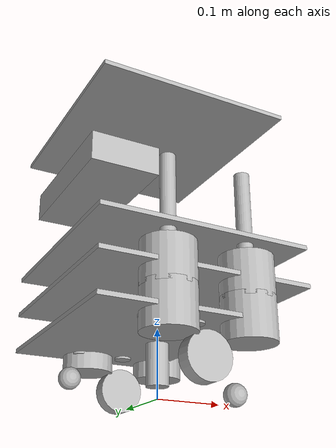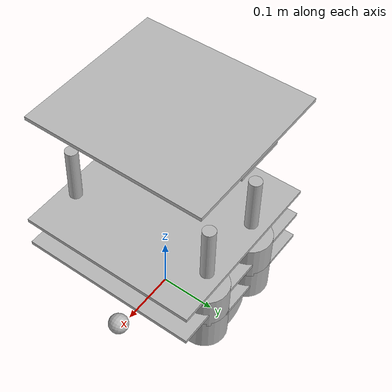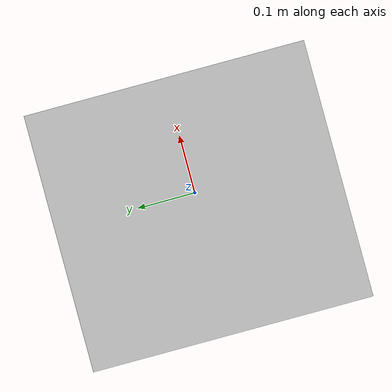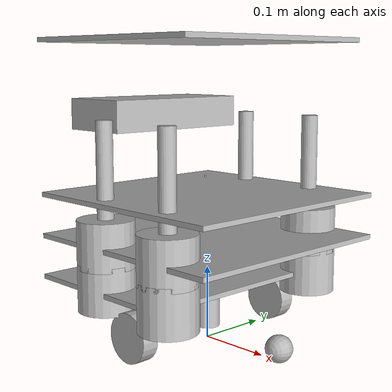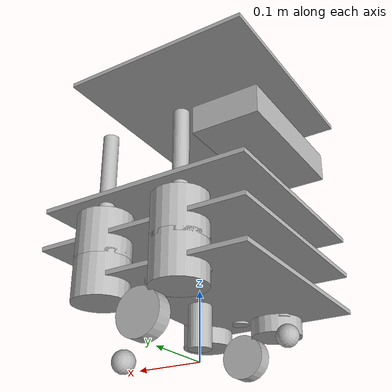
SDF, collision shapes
<?xml version='1.0'?>
<sdf version='1.7'>
  <model name='bot'>
    <link name='rack'>
      <inertial>
        <pose>0.001453 -0.000453 0.029787 0 -0 0</pose>
        <inertia>
          <ixx>0.05864</ixx>
          <ixy>0.000124</ixy>
          <ixz>0.000615</ixz>
          <iyy>0.058786</iyy>
          <iyz>1.4e-05</iyz>
          <izz>1.53244</izz>
        </inertia>
        <mass>2.234</mass>
      </inertial>
      <self_collide>0</self_collide>
      <enable_wind>0</enable_wind>
      <kinematic>0</kinematic>
      <pose>0 0 0 0 -0 0</pose>
      <visual name='plate_0_visual'>
        <pose>-0.04334 0 0.084757 0 -0 0</pose>
        <geometry>
          <mesh>
            <uri>model://bot/meshes/plate_0_logo.dae</uri>
          </mesh>
        </geometry>
        <material>
          <shader type='pixel'/>
          <emissive>0 0 0 1</emissive>
        </material>
        <transparency>0</transparency>
        <cast_shadows>1</cast_shadows>
      </visual>
      <visual name='standoff_2in_0_visual'>
        <pose>0.06764 0.13142 0.08798 0 -0 0</pose>
        <geometry>
          <mesh>
            <uri>model://bot/meshes/68-04552-2000-RA_Turtlebot_M-F_Standoff.dae</uri>
          </mesh>
        </geometry>
        <material>
          <shader type='pixel'/>
          <emissive>0 0 0 1</emissive>
        </material>
        <transparency>0</transparency>
        <cast_shadows>1</cast_shadows>
      </visual>
      <visual name='standoff_2in_1_visual'>
        <pose>0.06764 -0.13142 0.08798 0 -0 0</pose>
        <geometry>
          <mesh>
            <uri>model://bot/meshes/68-04552-2000-RA_Turtlebot_M-F_Standoff.dae</uri>
          </mesh>
        </geometry>
        <material>
          <shader type='pixel'/>
          <emissive>0 0 0 1</emissive>
        </material>
        <transparency>0</transparency>
        <cast_shadows>1</cast_shadows>
      </visual>
      <visual name='standoff_2in_2_visual'>
        <pose>-0.052832 -0.13142 0.08798 0 -0 0</pose>
        <geometry>
          <mesh>
            <uri>model://bot/meshes/68-04552-2000-RA_Turtlebot_M-F_Standoff.dae</uri>
          </mesh>
        </geometry>
        <material>
          <shader type='pixel'/>
          <emissive>0 0 0 1</emissive>
        </material>
        <transparency>0</transparency>
        <cast_shadows>1</cast_shadows>
      </visual>
      <visual name='standoff_2in_3_visual'>
        <pose>-0.052832 0.13142 0.08798 0 -0 0</pose>
        <geometry>
          <mesh>
            <uri>model://bot/meshes/68-04552-2000-RA_Turtlebot_M-F_Standoff.dae</uri>
          </mesh>
        </geometry>
        <material>
          <shader type='pixel'/>
          <emissive>0 0 0 1</emissive>
        </material>
        <transparency>0</transparency>
        <cast_shadows>1</cast_shadows>
      </visual>
      <visual name='standoff_2in_4_visual'>
        <pose>0.06764 0.13142 0.14513 0 -0 0</pose>
        <geometry>
          <mesh>
            <uri>model://bot/meshes/68-04552-2000-RA_Turtlebot_M-F_Standoff.dae</uri>
          </mesh>
        </geometry>
        <material>
          <shader type='pixel'/>
          <emissive>0 0 0 1</emissive>
        </material>
        <transparency>0</transparency>
        <cast_shadows>1</cast_shadows>
      </visual>
      <visual name='standoff_2in_5_visual'>
        <pose>0.06764 -0.13142 0.14513 0 -0 0</pose>
        <geometry>
          <mesh>
            <uri>model://bot/meshes/68-04552-2000-RA_Turtlebot_M-F_Standoff.dae</uri>
          </mesh>
        </geometry>
        <material>
          <shader type='pixel'/>
          <emissive>0 0 0 1</emissive>
        </material>
        <transparency>0</transparency>
        <cast_shadows>1</cast_shadows>
      </visual>
      <visual name='standoff_2in_6_visual'>
        <pose>-0.052832 -0.13142 0.14513 0 -0 0</pose>
        <geometry>
          <mesh>
            <uri>model://bot/meshes/68-04552-2000-RA_Turtlebot_M-F_Standoff.dae</uri>
          </mesh>
        </geometry>
        <material>
          <shader type='pixel'/>
          <emissive>0 0 0 1</emissive>
        </material>
        <transparency>0</transparency>
        <cast_shadows>1</cast_shadows>
      </visual>
      <visual name='standoff_2in_7_visual'>
        <pose>-0.052832 0.13142 0.14513 0 -0 0</pose>
        <geometry>
          <mesh>
            <uri>model://bot/meshes/68-04552-2000-RA_Turtlebot_M-F_Standoff.dae</uri>
          </mesh>
        </geometry>
        <material>
          <shader type='pixel'/>
          <emissive>0 0 0 1</emissive>
        </material>
        <transparency>0</transparency>
        <cast_shadows>1</cast_shadows>
      </visual>
      <visual name='standoff_8in_0_visual'>
        <pose>0.06764 0.13142 0.20228 0 -0 0</pose>
        <geometry>
          <mesh>
            <uri>model://bot/meshes/68-02421-8000-RA_Turtlebot_F-F_Standoff.dae</uri>
          </mesh>
        </geometry>
        <material>
          <shader type='pixel'/>
          <emissive>0 0 0 1</emissive>
        </material>
        <transparency>0</transparency>
        <cast_shadows>1</cast_shadows>
      </visual>
      <visual name='standoff_8in_1_visual'>
        <pose>0.06764 -0.13142 0.20228 0 -0 0</pose>
        <geometry>
          <mesh>
            <uri>model://bot/meshes/68-02421-8000-RA_Turtlebot_F-F_Standoff.dae</uri>
          </mesh>
        </geometry>
        <material>
          <shader type='pixel'/>
          <emissive>0 0 0 1</emissive>
        </material>
        <transparency>0</transparency>
        <cast_shadows>1</cast_shadows>
      </visual>
      <visual name='standoff_8in_2_visual'>
        <pose>-0.052832 -0.13142 0.20228 0 -0 0</pose>
        <geometry>
          <mesh>
            <uri>model://bot/meshes/68-02421-8000-RA_Turtlebot_F-F_Standoff.dae</uri>
          </mesh>
        </geometry>
        <material>
          <shader type='pixel'/>
          <emissive>0 0 0 1</emissive>
        </material>
        <transparency>0</transparency>
        <cast_shadows>1</cast_shadows>
      </visual>
      <visual name='standoff_8in_3_visual'>
        <pose>-0.052832 0.13142 0.20228 0 -0 0</pose>
        <geometry>
          <mesh>
            <uri>model://bot/meshes/68-02421-8000-RA_Turtlebot_F-F_Standoff.dae</uri>
          </mesh>
        </geometry>
        <material>
          <shader type='pixel'/>
          <emissive>0 0 0 1</emissive>
        </material>
        <transparency>0</transparency>
        <cast_shadows>1</cast_shadows>
      </visual>
      <visual name='standoff_kinect_0_visual'>
        <pose>-0.105098 0.098 0.202308 0 -0 0</pose>
        <geometry>
          <mesh>
            <uri>model://bot/meshes/68-04556-RA_Kinect_Standoff_Assy.dae</uri>
          </mesh>
        </geometry>
        <material>
          <shader type='pixel'/>
          <emissive>0 0 0 1</emissive>
        </material>
        <transparency>0</transparency>
        <cast_shadows>1</cast_shadows>
      </visual>
      <visual name='standoff_kinect_1_visual'>
        <pose>-0.105098 -0.098 0.202308 0 -0 0</pose>
        <geometry>
          <mesh>
            <uri>model://bot/meshes/68-04556-RA_Kinect_Standoff_Assy.dae</uri>
          </mesh>
        </geometry>
        <material>
          <shader type='pixel'/>
          <emissive>0 0 0 1</emissive>
        </material>
        <transparency>0</transparency>
        <cast_shadows>1</cast_shadows>
      </visual>
      <visual name='plate_1_visual'>
        <pose>-0.00266 0 0.141907 0 -0 0</pose>
        <geometry>
          <mesh>
            <uri>model://bot/meshes/plate_1_logo.dae</uri>
          </mesh>
        </geometry>
        <material>
          <shader type='pixel'/>
          <emissive>0 0 0 1</emissive>
        </material>
        <transparency>0</transparency>
        <cast_shadows>1</cast_shadows>
      </visual>
      <visual name='plate_2_visual'>
        <pose>-0.00266 0 0.199108 0 -0 0</pose>
        <geometry>
          <mesh>
            <uri>model://bot/meshes/plate_1_logo.dae</uri>
          </mesh>
        </geometry>
        <material>
          <shader type='pixel'/>
          <emissive>0 0 0 1</emissive>
        </material>
        <transparency>0</transparency>
        <cast_shadows>1</cast_shadows>
      </visual>
      <visual name='plate_3_visual'>
        <pose>-0.01582 0 0.405457 0 -0 0</pose>
        <geometry>
          <mesh>
            <uri>model://bot/meshes/plate_2_logo.dae</uri>
          </mesh>
        </geometry>
        <material>
          <shader type='pixel'/>
          <emissive>0 0 0 1</emissive>
        </material>
        <transparency>0</transparency>
        <cast_shadows>1</cast_shadows>
      </visual>
      <visual name='spacer_0_visual'>
        <pose>-0.00254 0.111468 0.079992 0 -0 0</pose>
        <geometry>
          <mesh>
            <uri>model://bot/meshes/68-02403-125_Spacer.dae</uri>
          </mesh>
        </geometry>
        <material>
          <shader type='pixel'/>
          <emissive>0 0 0 1</emissive>
        </material>
        <transparency>0</transparency>
        <cast_shadows>1</cast_shadows>
      </visual>
      <visual name='spacer_2_visual'>
        <pose>-0.07239 -0.111468 0.079992 0 -0 0</pose>
        <geometry>
          <mesh>
            <uri>model://bot/meshes/68-02403-125_Spacer.dae</uri>
          </mesh>
        </geometry>
        <material>
          <shader type='pixel'/>
          <emissive>0 0 0 1</emissive>
        </material>
        <transparency>0</transparency>
        <cast_shadows>1</cast_shadows>
      </visual>
      <visual name='spacer_1_visual'>
        <pose>-0.00254 -0.111468 0.079992 0 -0 0</pose>
        <geometry>
          <mesh>
            <uri>model://bot/meshes/68-02403-125_Spacer.dae</uri>
          </mesh>
        </geometry>
        <material>
          <shader type='pixel'/>
          <emissive>0 0 0 1</emissive>
        </material>
        <transparency>0</transparency>
        <cast_shadows>1</cast_shadows>
      </visual>
      <visual name='spacer_3_visual'>
        <pose>-0.07239 0.111468 0.079992 0 -0 0</pose>
        <geometry>
          <mesh>
            <uri>model://bot/meshes/68-02403-125_Spacer.dae</uri>
          </mesh>
        </geometry>
        <material>
          <shader type='pixel'/>
          <emissive>0 0 0 1</emissive>
        </material>
        <transparency>0</transparency>
        <cast_shadows>1</cast_shadows>
      </visual>
      <collision name='plate_0_collision'>
        <laser_retro>0</laser_retro>
        <max_contacts>10</max_contacts>
        <pose>-0.04334 0 0.084757 0 -0 0</pose>
        <geometry>
          <box>
            <size>0.233502 0.314845 0.006401</size>
          </box>
        </geometry>
        <surface>
          <friction>
            <ode>
              <mu>1</mu>
              <mu2>1</mu2>
              <fdir1>0 0 0</fdir1>
              <slip1>0</slip1>
              <slip2>0</slip2>
            </ode>
            <torsional>
              <coefficient>1</coefficient>
              <patch_radius>0</patch_radius>
              <surface_radius>0</surface_radius>
              <use_patch_radius>1</use_patch_radius>
              <ode>
                <slip>0</slip>
              </ode>
            </torsional>
          </friction>
          <bounce>
            <restitution_coefficient>0</restitution_coefficient>
            <threshold>1e+06</threshold>
          </bounce>
          <contact>
            <collide_without_contact>0</collide_without_contact>
            <collide_without_contact_bitmask>1</collide_without_contact_bitmask>
            <collide_bitmask>1</collide_bitmask>
            <ode>
              <soft_cfm>0</soft_cfm>
              <soft_erp>0.2</soft_erp>
              <kp>1e+13</kp>
              <kd>1</kd>
              <max_vel>0.01</max_vel>
              <min_depth>0</min_depth>
            </ode>
            <bullet>
              <split_impulse>1</split_impulse>
              <split_impulse_penetration_threshold>-0.01</split_impulse_penetration_threshold>
              <soft_cfm>0</soft_cfm>
              <soft_erp>0.2</soft_erp>
              <kp>1e+13</kp>
              <kd>1</kd>
            </bullet>
          </contact>
        </surface>
      </collision>
      <collision name='plate_2_collision'>
        <laser_retro>0</laser_retro>
        <max_contacts>10</max_contacts>
        <pose>-0.00266 0 0.199108 0 -0 0</pose>
        <geometry>
          <box>
            <size>0.314856 0.314856 0.006401</size>
          </box>
        </geometry>
        <surface>
          <friction>
            <ode>
              <mu>1</mu>
              <mu2>1</mu2>
              <fdir1>0 0 0</fdir1>
              <slip1>0</slip1>
              <slip2>0</slip2>
            </ode>
            <torsional>
              <coefficient>1</coefficient>
              <patch_radius>0</patch_radius>
              <surface_radius>0</surface_radius>
              <use_patch_radius>1</use_patch_radius>
              <ode>
                <slip>0</slip>
              </ode>
            </torsional>
          </friction>
          <bounce>
            <restitution_coefficient>0</restitution_coefficient>
            <threshold>1e+06</threshold>
          </bounce>
          <contact>
            <collide_without_contact>0</collide_without_contact>
            <collide_without_contact_bitmask>1</collide_without_contact_bitmask>
            <collide_bitmask>1</collide_bitmask>
            <ode>
              <soft_cfm>0</soft_cfm>
              <soft_erp>0.2</soft_erp>
              <kp>1e+13</kp>
              <kd>1</kd>
              <max_vel>0.01</max_vel>
              <min_depth>0</min_depth>
            </ode>
            <bullet>
              <split_impulse>1</split_impulse>
              <split_impulse_penetration_threshold>-0.01</split_impulse_penetration_threshold>
              <soft_cfm>0</soft_cfm>
              <soft_erp>0.2</soft_erp>
              <kp>1e+13</kp>
              <kd>1</kd>
            </bullet>
          </contact>
        </surface>
      </collision>
      <collision name='plate_1_collision'>
        <laser_retro>0</laser_retro>
        <max_contacts>10</max_contacts>
        <pose>-0.00266 0 0.141907 0 -0 0</pose>
        <geometry>
          <box>
            <size>0.314856 0.314856 0.006401</size>
          </box>
        </geometry>
        <surface>
          <friction>
            <ode>
              <mu>1</mu>
              <mu2>1</mu2>
              <fdir1>0 0 0</fdir1>
              <slip1>0</slip1>
              <slip2>0</slip2>
            </ode>
            <torsional>
              <coefficient>1</coefficient>
              <patch_radius>0</patch_radius>
              <surface_radius>0</surface_radius>
              <use_patch_radius>1</use_patch_radius>
              <ode>
                <slip>0</slip>
              </ode>
            </torsional>
          </friction>
          <bounce>
            <restitution_coefficient>0</restitution_coefficient>
            <threshold>1e+06</threshold>
          </bounce>
          <contact>
            <collide_without_contact>0</collide_without_contact>
            <collide_without_contact_bitmask>1</collide_without_contact_bitmask>
            <collide_bitmask>1</collide_bitmask>
            <ode>
              <soft_cfm>0</soft_cfm>
              <soft_erp>0.2</soft_erp>
              <kp>1e+13</kp>
              <kd>1</kd>
              <max_vel>0.01</max_vel>
              <min_depth>0</min_depth>
            </ode>
            <bullet>
              <split_impulse>1</split_impulse>
              <split_impulse_penetration_threshold>-0.01</split_impulse_penetration_threshold>
              <soft_cfm>0</soft_cfm>
              <soft_erp>0.2</soft_erp>
              <kp>1e+13</kp>
              <kd>1</kd>
            </bullet>
          </contact>
        </surface>
      </collision>
      <collision name='spacer_0_collision'>
        <laser_retro>0</laser_retro>
        <max_contacts>10</max_contacts>
        <pose>-0.00254 0.111468 0.079992 0 -0 0</pose>
        <geometry>
          <cylinder>
            <radius>0.0127</radius>
            <length>0.003175</length>
          </cylinder>
        </geometry>
        <surface>
          <friction>
            <ode>
              <mu>1</mu>
              <mu2>1</mu2>
              <fdir1>0 0 0</fdir1>
              <slip1>0</slip1>
              <slip2>0</slip2>
            </ode>
            <torsional>
              <coefficient>1</coefficient>
              <patch_radius>0</patch_radius>
              <surface_radius>0</surface_radius>
              <use_patch_radius>1</use_patch_radius>
              <ode>
                <slip>0</slip>
              </ode>
            </torsional>
          </friction>
          <bounce>
            <restitution_coefficient>0</restitution_coefficient>
            <threshold>1e+06</threshold>
          </bounce>
          <contact>
            <collide_without_contact>0</collide_without_contact>
            <collide_without_contact_bitmask>1</collide_without_contact_bitmask>
            <collide_bitmask>1</collide_bitmask>
            <ode>
              <soft_cfm>0</soft_cfm>
              <soft_erp>0.2</soft_erp>
              <kp>1e+13</kp>
              <kd>1</kd>
              <max_vel>0.01</max_vel>
              <min_depth>0</min_depth>
            </ode>
            <bullet>
              <split_impulse>1</split_impulse>
              <split_impulse_penetration_threshold>-0.01</split_impulse_penetration_threshold>
              <soft_cfm>0</soft_cfm>
              <soft_erp>0.2</soft_erp>
              <kp>1e+13</kp>
              <kd>1</kd>
            </bullet>
          </contact>
        </surface>
      </collision>
      <collision name='plate_3_collision'>
        <laser_retro>0</laser_retro>
        <max_contacts>10</max_contacts>
        <pose>-0.01582 0 0.405457 0 -0 0</pose>
        <geometry>
          <box>
            <size>0.288 0.315 0.006401</size>
          </box>
        </geometry>
        <surface>
          <friction>
            <ode>
              <mu>1</mu>
              <mu2>1</mu2>
              <fdir1>0 0 0</fdir1>
              <slip1>0</slip1>
              <slip2>0</slip2>
            </ode>
            <torsional>
              <coefficient>1</coefficient>
              <patch_radius>0</patch_radius>
              <surface_radius>0</surface_radius>
              <use_patch_radius>1</use_patch_radius>
              <ode>
                <slip>0</slip>
              </ode>
            </torsional>
          </friction>
          <bounce>
            <restitution_coefficient>0</restitution_coefficient>
            <threshold>1e+06</threshold>
          </bounce>
          <contact>
            <collide_without_contact>0</collide_without_contact>
            <collide_without_contact_bitmask>1</collide_without_contact_bitmask>
            <collide_bitmask>1</collide_bitmask>
            <ode>
              <soft_cfm>0</soft_cfm>
              <soft_erp>0.2</soft_erp>
              <kp>1e+13</kp>
              <kd>1</kd>
              <max_vel>0.01</max_vel>
              <min_depth>0</min_depth>
            </ode>
            <bullet>
              <split_impulse>1</split_impulse>
              <split_impulse_penetration_threshold>-0.01</split_impulse_penetration_threshold>
              <soft_cfm>0</soft_cfm>
              <soft_erp>0.2</soft_erp>
              <kp>1e+13</kp>
              <kd>1</kd>
            </bullet>
          </contact>
        </surface>
      </collision>
      <collision name='spacer_1_collision'>
        <laser_retro>0</laser_retro>
        <max_contacts>10</max_contacts>
        <pose>-0.00254 -0.111468 0.079992 0 -0 0</pose>
        <geometry>
          <cylinder>
            <radius>0.0127</radius>
            <length>0.003175</length>
          </cylinder>
        </geometry>
        <surface>
          <friction>
            <ode>
              <mu>1</mu>
              <mu2>1</mu2>
              <fdir1>0 0 0</fdir1>
              <slip1>0</slip1>
              <slip2>0</slip2>
            </ode>
            <torsional>
              <coefficient>1</coefficient>
              <patch_radius>0</patch_radius>
              <surface_radius>0</surface_radius>
              <use_patch_radius>1</use_patch_radius>
              <ode>
                <slip>0</slip>
              </ode>
            </torsional>
          </friction>
          <bounce>
            <restitution_coefficient>0</restitution_coefficient>
            <threshold>1e+06</threshold>
          </bounce>
          <contact>
            <collide_without_contact>0</collide_without_contact>
            <collide_without_contact_bitmask>1</collide_without_contact_bitmask>
            <collide_bitmask>1</collide_bitmask>
            <ode>
              <soft_cfm>0</soft_cfm>
              <soft_erp>0.2</soft_erp>
              <kp>1e+13</kp>
              <kd>1</kd>
              <max_vel>0.01</max_vel>
              <min_depth>0</min_depth>
            </ode>
            <bullet>
              <split_impulse>1</split_impulse>
              <split_impulse_penetration_threshold>-0.01</split_impulse_penetration_threshold>
              <soft_cfm>0</soft_cfm>
              <soft_erp>0.2</soft_erp>
              <kp>1e+13</kp>
              <kd>1</kd>
            </bullet>
          </contact>
        </surface>
      </collision>
      <collision name='spacer_2_collision'>
        <laser_retro>0</laser_retro>
        <max_contacts>10</max_contacts>
        <pose>-0.07239 -0.111468 0.079992 0 -0 0</pose>
        <geometry>
          <cylinder>
            <radius>0.0127</radius>
            <length>0.003175</length>
          </cylinder>
        </geometry>
        <surface>
          <friction>
            <ode>
              <mu>1</mu>
              <mu2>1</mu2>
              <fdir1>0 0 0</fdir1>
              <slip1>0</slip1>
              <slip2>0</slip2>
            </ode>
            <torsional>
              <coefficient>1</coefficient>
              <patch_radius>0</patch_radius>
              <surface_radius>0</surface_radius>
              <use_patch_radius>1</use_patch_radius>
              <ode>
                <slip>0</slip>
              </ode>
            </torsional>
          </friction>
          <bounce>
            <restitution_coefficient>0</restitution_coefficient>
            <threshold>1e+06</threshold>
          </bounce>
          <contact>
            <collide_without_contact>0</collide_without_contact>
            <collide_without_contact_bitmask>1</collide_without_contact_bitmask>
            <collide_bitmask>1</collide_bitmask>
            <ode>
              <soft_cfm>0</soft_cfm>
              <soft_erp>0.2</soft_erp>
              <kp>1e+13</kp>
              <kd>1</kd>
              <max_vel>0.01</max_vel>
              <min_depth>0</min_depth>
            </ode>
            <bullet>
              <split_impulse>1</split_impulse>
              <split_impulse_penetration_threshold>-0.01</split_impulse_penetration_threshold>
              <soft_cfm>0</soft_cfm>
              <soft_erp>0.2</soft_erp>
              <kp>1e+13</kp>
              <kd>1</kd>
            </bullet>
          </contact>
        </surface>
      </collision>
      <collision name='spacer_3_collision'>
        <laser_retro>0</laser_retro>
        <max_contacts>10</max_contacts>
        <pose>-0.07239 0.111468 0.079992 0 -0 0</pose>
        <geometry>
          <cylinder>
            <radius>0.0127</radius>
            <length>0.003175</length>
          </cylinder>
        </geometry>
        <surface>
          <friction>
            <ode>
              <mu>1</mu>
              <mu2>1</mu2>
              <fdir1>0 0 0</fdir1>
              <slip1>0</slip1>
              <slip2>0</slip2>
            </ode>
            <torsional>
              <coefficient>1</coefficient>
              <patch_radius>0</patch_radius>
              <surface_radius>0</surface_radius>
              <use_patch_radius>1</use_patch_radius>
              <ode>
                <slip>0</slip>
              </ode>
            </torsional>
          </friction>
          <bounce>
            <restitution_coefficient>0</restitution_coefficient>
            <threshold>1e+06</threshold>
          </bounce>
          <contact>
            <collide_without_contact>0</collide_without_contact>
            <collide_without_contact_bitmask>1</collide_without_contact_bitmask>
            <collide_bitmask>1</collide_bitmask>
            <ode>
              <soft_cfm>0</soft_cfm>
              <soft_erp>0.2</soft_erp>
              <kp>1e+13</kp>
              <kd>1</kd>
              <max_vel>0.01</max_vel>
              <min_depth>0</min_depth>
            </ode>
            <bullet>
              <split_impulse>1</split_impulse>
              <split_impulse_penetration_threshold>-0.01</split_impulse_penetration_threshold>
              <soft_cfm>0</soft_cfm>
              <soft_erp>0.2</soft_erp>
              <kp>1e+13</kp>
              <kd>1</kd>
            </bullet>
          </contact>
        </surface>
      </collision>
      <collision name='standoff_2in_0_collision'>
        <laser_retro>0</laser_retro>
        <max_contacts>10</max_contacts>
        <pose>0.06764 0.13142 0.08798 0 -0 0</pose>
        <geometry>
          <cylinder>
            <radius>0.0381</radius>
            <length>0.0635</length>
          </cylinder>
        </geometry>
        <surface>
          <friction>
            <ode>
              <mu>1</mu>
              <mu2>1</mu2>
              <fdir1>0 0 0</fdir1>
              <slip1>0</slip1>
              <slip2>0</slip2>
            </ode>
            <torsional>
              <coefficient>1</coefficient>
              <patch_radius>0</patch_radius>
              <surface_radius>0</surface_radius>
              <use_patch_radius>1</use_patch_radius>
              <ode>
                <slip>0</slip>
              </ode>
            </torsional>
          </friction>
          <bounce>
            <restitution_coefficient>0</restitution_coefficient>
            <threshold>1e+06</threshold>
          </bounce>
          <contact>
            <collide_without_contact>0</collide_without_contact>
            <collide_without_contact_bitmask>1</collide_without_contact_bitmask>
            <collide_bitmask>1</collide_bitmask>
            <ode>
              <soft_cfm>0</soft_cfm>
              <soft_erp>0.2</soft_erp>
              <kp>1e+13</kp>
              <kd>1</kd>
              <max_vel>0.01</max_vel>
              <min_depth>0</min_depth>
            </ode>
            <bullet>
              <split_impulse>1</split_impulse>
              <split_impulse_penetration_threshold>-0.01</split_impulse_penetration_threshold>
              <soft_cfm>0</soft_cfm>
              <soft_erp>0.2</soft_erp>
              <kp>1e+13</kp>
              <kd>1</kd>
            </bullet>
          </contact>
        </surface>
      </collision>
      <collision name='standoff_2in_1_collision'>
        <laser_retro>0</laser_retro>
        <max_contacts>10</max_contacts>
        <pose>0.06764 -0.13142 0.08798 0 -0 0</pose>
        <geometry>
          <cylinder>
            <radius>0.0381</radius>
            <length>0.0635</length>
          </cylinder>
        </geometry>
        <surface>
          <friction>
            <ode>
              <mu>1</mu>
              <mu2>1</mu2>
              <fdir1>0 0 0</fdir1>
              <slip1>0</slip1>
              <slip2>0</slip2>
            </ode>
            <torsional>
              <coefficient>1</coefficient>
              <patch_radius>0</patch_radius>
              <surface_radius>0</surface_radius>
              <use_patch_radius>1</use_patch_radius>
              <ode>
                <slip>0</slip>
              </ode>
            </torsional>
          </friction>
          <bounce>
            <restitution_coefficient>0</restitution_coefficient>
            <threshold>1e+06</threshold>
          </bounce>
          <contact>
            <collide_without_contact>0</collide_without_contact>
            <collide_without_contact_bitmask>1</collide_without_contact_bitmask>
            <collide_bitmask>1</collide_bitmask>
            <ode>
              <soft_cfm>0</soft_cfm>
              <soft_erp>0.2</soft_erp>
              <kp>1e+13</kp>
              <kd>1</kd>
              <max_vel>0.01</max_vel>
              <min_depth>0</min_depth>
            </ode>
            <bullet>
              <split_impulse>1</split_impulse>
              <split_impulse_penetration_threshold>-0.01</split_impulse_penetration_threshold>
              <soft_cfm>0</soft_cfm>
              <soft_erp>0.2</soft_erp>
              <kp>1e+13</kp>
              <kd>1</kd>
            </bullet>
          </contact>
        </surface>
      </collision>
      <collision name='standoff_2in_3_collision'>
        <laser_retro>0</laser_retro>
        <max_contacts>10</max_contacts>
        <pose>-0.052832 0.13142 0.08798 0 -0 0</pose>
        <geometry>
          <cylinder>
            <radius>0.0381</radius>
            <length>0.0635</length>
          </cylinder>
        </geometry>
        <surface>
          <friction>
            <ode>
              <mu>1</mu>
              <mu2>1</mu2>
              <fdir1>0 0 0</fdir1>
              <slip1>0</slip1>
              <slip2>0</slip2>
            </ode>
            <torsional>
              <coefficient>1</coefficient>
              <patch_radius>0</patch_radius>
              <surface_radius>0</surface_radius>
              <use_patch_radius>1</use_patch_radius>
              <ode>
                <slip>0</slip>
              </ode>
            </torsional>
          </friction>
          <bounce>
            <restitution_coefficient>0</restitution_coefficient>
            <threshold>1e+06</threshold>
          </bounce>
          <contact>
            <collide_without_contact>0</collide_without_contact>
            <collide_without_contact_bitmask>1</collide_without_contact_bitmask>
            <collide_bitmask>1</collide_bitmask>
            <ode>
              <soft_cfm>0</soft_cfm>
              <soft_erp>0.2</soft_erp>
              <kp>1e+13</kp>
              <kd>1</kd>
              <max_vel>0.01</max_vel>
              <min_depth>0</min_depth>
            </ode>
            <bullet>
              <split_impulse>1</split_impulse>
              <split_impulse_penetration_threshold>-0.01</split_impulse_penetration_threshold>
              <soft_cfm>0</soft_cfm>
              <soft_erp>0.2</soft_erp>
              <kp>1e+13</kp>
              <kd>1</kd>
            </bullet>
          </contact>
        </surface>
      </collision>
      <collision name='standoff_2in_2_collision'>
        <laser_retro>0</laser_retro>
        <max_contacts>10</max_contacts>
        <pose>-0.052832 -0.13142 0.08798 0 -0 0</pose>
        <geometry>
          <cylinder>
            <radius>0.0381</radius>
            <length>0.0635</length>
          </cylinder>
        </geometry>
        <surface>
          <friction>
            <ode>
              <mu>1</mu>
              <mu2>1</mu2>
              <fdir1>0 0 0</fdir1>
              <slip1>0</slip1>
              <slip2>0</slip2>
            </ode>
            <torsional>
              <coefficient>1</coefficient>
              <patch_radius>0</patch_radius>
              <surface_radius>0</surface_radius>
              <use_patch_radius>1</use_patch_radius>
              <ode>
                <slip>0</slip>
              </ode>
            </torsional>
          </friction>
          <bounce>
            <restitution_coefficient>0</restitution_coefficient>
            <threshold>1e+06</threshold>
          </bounce>
          <contact>
            <collide_without_contact>0</collide_without_contact>
            <collide_without_contact_bitmask>1</collide_without_contact_bitmask>
            <collide_bitmask>1</collide_bitmask>
            <ode>
              <soft_cfm>0</soft_cfm>
              <soft_erp>0.2</soft_erp>
              <kp>1e+13</kp>
              <kd>1</kd>
              <max_vel>0.01</max_vel>
              <min_depth>0</min_depth>
            </ode>
            <bullet>
              <split_impulse>1</split_impulse>
              <split_impulse_penetration_threshold>-0.01</split_impulse_penetration_threshold>
              <soft_cfm>0</soft_cfm>
              <soft_erp>0.2</soft_erp>
              <kp>1e+13</kp>
              <kd>1</kd>
            </bullet>
          </contact>
        </surface>
      </collision>
      <collision name='standoff_2in_5_collision'>
        <laser_retro>0</laser_retro>
        <max_contacts>10</max_contacts>
        <pose>0.06764 -0.13142 0.14513 0 -0 0</pose>
        <geometry>
          <cylinder>
            <radius>0.0381</radius>
            <length>0.0635</length>
          </cylinder>
        </geometry>
        <surface>
          <friction>
            <ode>
              <mu>1</mu>
              <mu2>1</mu2>
              <fdir1>0 0 0</fdir1>
              <slip1>0</slip1>
              <slip2>0</slip2>
            </ode>
            <torsional>
              <coefficient>1</coefficient>
              <patch_radius>0</patch_radius>
              <surface_radius>0</surface_radius>
              <use_patch_radius>1</use_patch_radius>
              <ode>
                <slip>0</slip>
              </ode>
            </torsional>
          </friction>
          <bounce>
            <restitution_coefficient>0</restitution_coefficient>
            <threshold>1e+06</threshold>
          </bounce>
          <contact>
            <collide_without_contact>0</collide_without_contact>
            <collide_without_contact_bitmask>1</collide_without_contact_bitmask>
            <collide_bitmask>1</collide_bitmask>
            <ode>
              <soft_cfm>0</soft_cfm>
              <soft_erp>0.2</soft_erp>
              <kp>1e+13</kp>
              <kd>1</kd>
              <max_vel>0.01</max_vel>
              <min_depth>0</min_depth>
            </ode>
            <bullet>
              <split_impulse>1</split_impulse>
              <split_impulse_penetration_threshold>-0.01</split_impulse_penetration_threshold>
              <soft_cfm>0</soft_cfm>
              <soft_erp>0.2</soft_erp>
              <kp>1e+13</kp>
              <kd>1</kd>
            </bullet>
          </contact>
        </surface>
      </collision>
      <collision name='standoff_2in_4_collision'>
        <laser_retro>0</laser_retro>
        <max_contacts>10</max_contacts>
        <pose>0.06764 0.13142 0.14513 0 -0 0</pose>
        <geometry>
          <cylinder>
            <radius>0.0381</radius>
            <length>0.0635</length>
          </cylinder>
        </geometry>
        <surface>
          <friction>
            <ode>
              <mu>1</mu>
              <mu2>1</mu2>
              <fdir1>0 0 0</fdir1>
              <slip1>0</slip1>
              <slip2>0</slip2>
            </ode>
            <torsional>
              <coefficient>1</coefficient>
              <patch_radius>0</patch_radius>
              <surface_radius>0</surface_radius>
              <use_patch_radius>1</use_patch_radius>
              <ode>
                <slip>0</slip>
              </ode>
            </torsional>
          </friction>
          <bounce>
            <restitution_coefficient>0</restitution_coefficient>
            <threshold>1e+06</threshold>
          </bounce>
          <contact>
            <collide_without_contact>0</collide_without_contact>
            <collide_without_contact_bitmask>1</collide_without_contact_bitmask>
            <collide_bitmask>1</collide_bitmask>
            <ode>
              <soft_cfm>0</soft_cfm>
              <soft_erp>0.2</soft_erp>
              <kp>1e+13</kp>
              <kd>1</kd>
              <max_vel>0.01</max_vel>
              <min_depth>0</min_depth>
            </ode>
            <bullet>
              <split_impulse>1</split_impulse>
              <split_impulse_penetration_threshold>-0.01</split_impulse_penetration_threshold>
              <soft_cfm>0</soft_cfm>
              <soft_erp>0.2</soft_erp>
              <kp>1e+13</kp>
              <kd>1</kd>
            </bullet>
          </contact>
        </surface>
      </collision>
      <collision name='standoff_2in_6_collision'>
        <laser_retro>0</laser_retro>
        <max_contacts>10</max_contacts>
        <pose>-0.052832 -0.13142 0.14513 0 -0 0</pose>
        <geometry>
          <cylinder>
            <radius>0.0381</radius>
            <length>0.0635</length>
          </cylinder>
        </geometry>
        <surface>
          <friction>
            <ode>
              <mu>1</mu>
              <mu2>1</mu2>
              <fdir1>0 0 0</fdir1>
              <slip1>0</slip1>
              <slip2>0</slip2>
            </ode>
            <torsional>
              <coefficient>1</coefficient>
              <patch_radius>0</patch_radius>
              <surface_radius>0</surface_radius>
              <use_patch_radius>1</use_patch_radius>
              <ode>
                <slip>0</slip>
              </ode>
            </torsional>
          </friction>
          <bounce>
            <restitution_coefficient>0</restitution_coefficient>
            <threshold>1e+06</threshold>
          </bounce>
          <contact>
            <collide_without_contact>0</collide_without_contact>
            <collide_without_contact_bitmask>1</collide_without_contact_bitmask>
            <collide_bitmask>1</collide_bitmask>
            <ode>
              <soft_cfm>0</soft_cfm>
              <soft_erp>0.2</soft_erp>
              <kp>1e+13</kp>
              <kd>1</kd>
              <max_vel>0.01</max_vel>
              <min_depth>0</min_depth>
            </ode>
            <bullet>
              <split_impulse>1</split_impulse>
              <split_impulse_penetration_threshold>-0.01</split_impulse_penetration_threshold>
              <soft_cfm>0</soft_cfm>
              <soft_erp>0.2</soft_erp>
              <kp>1e+13</kp>
              <kd>1</kd>
            </bullet>
          </contact>
        </surface>
      </collision>
      <collision name='standoff_8in_1_collision'>
        <laser_retro>0</laser_retro>
        <max_contacts>10</max_contacts>
        <pose>0.06764 -0.13142 0.20228 0 -0 0</pose>
        <geometry>
          <cylinder>
            <radius>0.011113</radius>
            <length>0.2032</length>
          </cylinder>
        </geometry>
        <surface>
          <friction>
            <ode>
              <mu>1</mu>
              <mu2>1</mu2>
              <fdir1>0 0 0</fdir1>
              <slip1>0</slip1>
              <slip2>0</slip2>
            </ode>
            <torsional>
              <coefficient>1</coefficient>
              <patch_radius>0</patch_radius>
              <surface_radius>0</surface_radius>
              <use_patch_radius>1</use_patch_radius>
              <ode>
                <slip>0</slip>
              </ode>
            </torsional>
          </friction>
          <bounce>
            <restitution_coefficient>0</restitution_coefficient>
            <threshold>1e+06</threshold>
          </bounce>
          <contact>
            <collide_without_contact>0</collide_without_contact>
            <collide_without_contact_bitmask>1</collide_without_contact_bitmask>
            <collide_bitmask>1</collide_bitmask>
            <ode>
              <soft_cfm>0</soft_cfm>
              <soft_erp>0.2</soft_erp>
              <kp>1e+13</kp>
              <kd>1</kd>
              <max_vel>0.01</max_vel>
              <min_depth>0</min_depth>
            </ode>
            <bullet>
              <split_impulse>1</split_impulse>
              <split_impulse_penetration_threshold>-0.01</split_impulse_penetration_threshold>
              <soft_cfm>0</soft_cfm>
              <soft_erp>0.2</soft_erp>
              <kp>1e+13</kp>
              <kd>1</kd>
            </bullet>
          </contact>
        </surface>
      </collision>
      <collision name='standoff_2in_7_collision'>
        <laser_retro>0</laser_retro>
        <max_contacts>10</max_contacts>
        <pose>-0.052832 0.13142 0.14513 0 -0 0</pose>
        <geometry>
          <cylinder>
            <radius>0.0381</radius>
            <length>0.0635</length>
          </cylinder>
        </geometry>
        <surface>
          <friction>
            <ode>
              <mu>1</mu>
              <mu2>1</mu2>
              <fdir1>0 0 0</fdir1>
              <slip1>0</slip1>
              <slip2>0</slip2>
            </ode>
            <torsional>
              <coefficient>1</coefficient>
              <patch_radius>0</patch_radius>
              <surface_radius>0</surface_radius>
              <use_patch_radius>1</use_patch_radius>
              <ode>
                <slip>0</slip>
              </ode>
            </torsional>
          </friction>
          <bounce>
            <restitution_coefficient>0</restitution_coefficient>
            <threshold>1e+06</threshold>
          </bounce>
          <contact>
            <collide_without_contact>0</collide_without_contact>
            <collide_without_contact_bitmask>1</collide_without_contact_bitmask>
            <collide_bitmask>1</collide_bitmask>
            <ode>
              <soft_cfm>0</soft_cfm>
              <soft_erp>0.2</soft_erp>
              <kp>1e+13</kp>
              <kd>1</kd>
              <max_vel>0.01</max_vel>
              <min_depth>0</min_depth>
            </ode>
            <bullet>
              <split_impulse>1</split_impulse>
              <split_impulse_penetration_threshold>-0.01</split_impulse_penetration_threshold>
              <soft_cfm>0</soft_cfm>
              <soft_erp>0.2</soft_erp>
              <kp>1e+13</kp>
              <kd>1</kd>
            </bullet>
          </contact>
        </surface>
      </collision>
      <collision name='standoff_8in_3_collision'>
        <laser_retro>0</laser_retro>
        <max_contacts>10</max_contacts>
        <pose>-0.052832 0.13142 0.20228 0 -0 0</pose>
        <geometry>
          <cylinder>
            <radius>0.011113</radius>
            <length>0.2032</length>
          </cylinder>
        </geometry>
        <surface>
          <friction>
            <ode>
              <mu>1</mu>
              <mu2>1</mu2>
              <fdir1>0 0 0</fdir1>
              <slip1>0</slip1>
              <slip2>0</slip2>
            </ode>
            <torsional>
              <coefficient>1</coefficient>
              <patch_radius>0</patch_radius>
              <surface_radius>0</surface_radius>
              <use_patch_radius>1</use_patch_radius>
              <ode>
                <slip>0</slip>
              </ode>
            </torsional>
          </friction>
          <bounce>
            <restitution_coefficient>0</restitution_coefficient>
            <threshold>1e+06</threshold>
          </bounce>
          <contact>
            <collide_without_contact>0</collide_without_contact>
            <collide_without_contact_bitmask>1</collide_without_contact_bitmask>
            <collide_bitmask>1</collide_bitmask>
            <ode>
              <soft_cfm>0</soft_cfm>
              <soft_erp>0.2</soft_erp>
              <kp>1e+13</kp>
              <kd>1</kd>
              <max_vel>0.01</max_vel>
              <min_depth>0</min_depth>
            </ode>
            <bullet>
              <split_impulse>1</split_impulse>
              <split_impulse_penetration_threshold>-0.01</split_impulse_penetration_threshold>
              <soft_cfm>0</soft_cfm>
              <soft_erp>0.2</soft_erp>
              <kp>1e+13</kp>
              <kd>1</kd>
            </bullet>
          </contact>
        </surface>
      </collision>
      <collision name='standoff_8in_0_collision'>
        <laser_retro>0</laser_retro>
        <max_contacts>10</max_contacts>
        <pose>0.06764 0.13142 0.20228 0 -0 0</pose>
        <geometry>
          <cylinder>
            <radius>0.011113</radius>
            <length>0.2032</length>
          </cylinder>
        </geometry>
        <surface>
          <friction>
            <ode>
              <mu>1</mu>
              <mu2>1</mu2>
              <fdir1>0 0 0</fdir1>
              <slip1>0</slip1>
              <slip2>0</slip2>
            </ode>
            <torsional>
              <coefficient>1</coefficient>
              <patch_radius>0</patch_radius>
              <surface_radius>0</surface_radius>
              <use_patch_radius>1</use_patch_radius>
              <ode>
                <slip>0</slip>
              </ode>
            </torsional>
          </friction>
          <bounce>
            <restitution_coefficient>0</restitution_coefficient>
            <threshold>1e+06</threshold>
          </bounce>
          <contact>
            <collide_without_contact>0</collide_without_contact>
            <collide_without_contact_bitmask>1</collide_without_contact_bitmask>
            <collide_bitmask>1</collide_bitmask>
            <ode>
              <soft_cfm>0</soft_cfm>
              <soft_erp>0.2</soft_erp>
              <kp>1e+13</kp>
              <kd>1</kd>
              <max_vel>0.01</max_vel>
              <min_depth>0</min_depth>
            </ode>
            <bullet>
              <split_impulse>1</split_impulse>
              <split_impulse_penetration_threshold>-0.01</split_impulse_penetration_threshold>
              <soft_cfm>0</soft_cfm>
              <soft_erp>0.2</soft_erp>
              <kp>1e+13</kp>
              <kd>1</kd>
            </bullet>
          </contact>
        </surface>
      </collision>
      <collision name='standoff_8in_2_collision'>
        <laser_retro>0</laser_retro>
        <max_contacts>10</max_contacts>
        <pose>-0.052832 -0.13142 0.20228 0 -0 0</pose>
        <geometry>
          <cylinder>
            <radius>0.011113</radius>
            <length>0.2032</length>
          </cylinder>
        </geometry>
        <surface>
          <friction>
            <ode>
              <mu>1</mu>
              <mu2>1</mu2>
              <fdir1>0 0 0</fdir1>
              <slip1>0</slip1>
              <slip2>0</slip2>
            </ode>
            <torsional>
              <coefficient>1</coefficient>
              <patch_radius>0</patch_radius>
              <surface_radius>0</surface_radius>
              <use_patch_radius>1</use_patch_radius>
              <ode>
                <slip>0</slip>
              </ode>
            </torsional>
          </friction>
          <bounce>
            <restitution_coefficient>0</restitution_coefficient>
            <threshold>1e+06</threshold>
          </bounce>
          <contact>
            <collide_without_contact>0</collide_without_contact>
            <collide_without_contact_bitmask>1</collide_without_contact_bitmask>
            <collide_bitmask>1</collide_bitmask>
            <ode>
              <soft_cfm>0</soft_cfm>
              <soft_erp>0.2</soft_erp>
              <kp>1e+13</kp>
              <kd>1</kd>
              <max_vel>0.01</max_vel>
              <min_depth>0</min_depth>
            </ode>
            <bullet>
              <split_impulse>1</split_impulse>
              <split_impulse_penetration_threshold>-0.01</split_impulse_penetration_threshold>
              <soft_cfm>0</soft_cfm>
              <soft_erp>0.2</soft_erp>
              <kp>1e+13</kp>
              <kd>1</kd>
            </bullet>
          </contact>
        </surface>
      </collision>
      <collision name='standoff_kinect_0_collision'>
        <laser_retro>0</laser_retro>
        <max_contacts>10</max_contacts>
        <pose>-0.105098 0.098 0.202308 0 -0 0</pose>
        <geometry>
          <cylinder>
            <radius>0.001111</radius>
            <length>0.008585</length>
          </cylinder>
        </geometry>
        <surface>
          <friction>
            <ode>
              <mu>1</mu>
              <mu2>1</mu2>
              <fdir1>0 0 0</fdir1>
              <slip1>0</slip1>
              <slip2>0</slip2>
            </ode>
            <torsional>
              <coefficient>1</coefficient>
              <patch_radius>0</patch_radius>
              <surface_radius>0</surface_radius>
              <use_patch_radius>1</use_patch_radius>
              <ode>
                <slip>0</slip>
              </ode>
            </torsional>
          </friction>
          <bounce>
            <restitution_coefficient>0</restitution_coefficient>
            <threshold>1e+06</threshold>
          </bounce>
          <contact>
            <collide_without_contact>0</collide_without_contact>
            <collide_without_contact_bitmask>1</collide_without_contact_bitmask>
            <collide_bitmask>1</collide_bitmask>
            <ode>
              <soft_cfm>0</soft_cfm>
              <soft_erp>0.2</soft_erp>
              <kp>1e+13</kp>
              <kd>1</kd>
              <max_vel>0.01</max_vel>
              <min_depth>0</min_depth>
            </ode>
            <bullet>
              <split_impulse>1</split_impulse>
              <split_impulse_penetration_threshold>-0.01</split_impulse_penetration_threshold>
              <soft_cfm>0</soft_cfm>
              <soft_erp>0.2</soft_erp>
              <kp>1e+13</kp>
              <kd>1</kd>
            </bullet>
          </contact>
        </surface>
      </collision>
      <collision name='standoff_kinect_1_collision'>
        <laser_retro>0</laser_retro>
        <max_contacts>10</max_contacts>
        <pose>-0.105098 -0.098 0.202308 0 -0 0</pose>
        <geometry>
          <cylinder>
            <radius>0.001111</radius>
            <length>0.008585</length>
          </cylinder>
        </geometry>
        <surface>
          <friction>
            <ode>
              <mu>1</mu>
              <mu2>1</mu2>
              <fdir1>0 0 0</fdir1>
              <slip1>0</slip1>
              <slip2>0</slip2>
            </ode>
            <torsional>
              <coefficient>1</coefficient>
              <patch_radius>0</patch_radius>
              <surface_radius>0</surface_radius>
              <use_patch_radius>1</use_patch_radius>
              <ode>
                <slip>0</slip>
              </ode>
            </torsional>
          </friction>
          <bounce>
            <restitution_coefficient>0</restitution_coefficient>
            <threshold>1e+06</threshold>
          </bounce>
          <contact>
            <collide_without_contact>0</collide_without_contact>
            <collide_without_contact_bitmask>1</collide_without_contact_bitmask>
            <collide_bitmask>1</collide_bitmask>
            <ode>
              <soft_cfm>0</soft_cfm>
              <soft_erp>0.2</soft_erp>
              <kp>1e+13</kp>
              <kd>1</kd>
              <max_vel>0.01</max_vel>
              <min_depth>0</min_depth>
            </ode>
            <bullet>
              <split_impulse>1</split_impulse>
              <split_impulse_penetration_threshold>-0.01</split_impulse_penetration_threshold>
              <soft_cfm>0</soft_cfm>
              <soft_erp>0.2</soft_erp>
              <kp>1e+13</kp>
              <kd>1</kd>
            </bullet>
          </contact>
        </surface>
      </collision>
    </link>
    <link name='base'>
      <inertial>
        <pose>0.001453 -0.000453 0.029787 0 -0 0</pose>
        <inertia>
          <ixx>0.05864</ixx>
          <ixy>0.000124</ixy>
          <ixz>0.000615</ixz>
          <iyy>0.058786</iyy>
          <iyz>1.4e-05</iyz>
          <izz>1.53244</izz>
        </inertia>
        <mass>2.234</mass>
      </inertial>
      <pose>0 0 0 0 -0 0</pose>
      <self_collide>0</self_collide>
      <enable_wind>0</enable_wind>
      <kinematic>0</kinematic>
      <visual name='base_visual'>
        <pose>0 0 0.0478 0 -0 0</pose>
        <geometry>
          <mesh>
            <uri>model://create/meshes/create_body.dae</uri>
          </mesh>
        </geometry>
        <material>
          <shader type='pixel'/>
        </material>
        <transparency>0</transparency>
        <cast_shadows>1</cast_shadows>
      </visual>
      <visual name='front_wheel_visual'>
        <pose>0.13 0 0.017 -0.000572 1.5707 1.57013</pose>
        <geometry>
          <sphere>
            <radius>0.009</radius>
          </sphere>
        </geometry>
        <material>
          <shader type='pixel'/>
        </material>
        <transparency>0</transparency>
        <cast_shadows>1</cast_shadows>
      </visual>
      <visual name='rear_wheel_visual'>
        <pose>-0.13 0 0.017 -0.000572 1.5707 1.57013</pose>
        <geometry>
          <sphere>
            <radius>0.0075</radius>
          </sphere>
        </geometry>
        <material>
          <shader type='pixel'/>
        </material>
        <transparency>0</transparency>
        <cast_shadows>1</cast_shadows>
      </visual>
      <collision name='base_collision'>
        <laser_retro>0</laser_retro>
        <max_contacts>10</max_contacts>
        <pose>0 0 0.0478 0 -0 0</pose>
        <geometry>
          <cylinder>
            <radius>0.016495</radius>
            <length>0.061163</length>
          </cylinder>
        </geometry>
        <surface>
          <friction>
            <ode>
              <mu>1</mu>
              <mu2>1</mu2>
              <fdir1>0 0 0</fdir1>
              <slip1>0</slip1>
              <slip2>0</slip2>
            </ode>
            <torsional>
              <coefficient>1</coefficient>
              <patch_radius>0</patch_radius>
              <surface_radius>0</surface_radius>
              <use_patch_radius>1</use_patch_radius>
              <ode>
                <slip>0</slip>
              </ode>
            </torsional>
          </friction>
          <bounce>
            <restitution_coefficient>0</restitution_coefficient>
            <threshold>1e+06</threshold>
          </bounce>
          <contact>
            <collide_without_contact>0</collide_without_contact>
            <collide_without_contact_bitmask>1</collide_without_contact_bitmask>
            <collide_bitmask>1</collide_bitmask>
            <ode>
              <soft_cfm>0</soft_cfm>
              <soft_erp>0.2</soft_erp>
              <kp>1e+13</kp>
              <kd>1</kd>
              <max_vel>0.01</max_vel>
              <min_depth>0</min_depth>
            </ode>
            <bullet>
              <split_impulse>1</split_impulse>
              <split_impulse_penetration_threshold>-0.01</split_impulse_penetration_threshold>
              <soft_cfm>0</soft_cfm>
              <soft_erp>0.2</soft_erp>
              <kp>1e+13</kp>
              <kd>1</kd>
            </bullet>
          </contact>
        </surface>
      </collision>
      <collision name='rear_wheel_collision'>
        <laser_retro>0</laser_retro>
        <max_contacts>10</max_contacts>
        <pose>-0.13 0 0.017 -0 1.5707 1.5707</pose>
        <geometry>
          <sphere>
            <radius>0.015</radius>
          </sphere>
        </geometry>
        <surface>
          <friction>
            <ode>
              <mu>0</mu>
              <mu2>0</mu2>
              <fdir1>0 0 0</fdir1>
              <slip1>0</slip1>
              <slip2>0</slip2>
            </ode>
            <torsional>
              <coefficient>1</coefficient>
              <patch_radius>0</patch_radius>
              <surface_radius>0</surface_radius>
              <use_patch_radius>1</use_patch_radius>
              <ode>
                <slip>0</slip>
              </ode>
            </torsional>
          </friction>
          <bounce>
            <restitution_coefficient>0</restitution_coefficient>
            <threshold>1e+06</threshold>
          </bounce>
          <contact>
            <collide_without_contact>0</collide_without_contact>
            <collide_without_contact_bitmask>1</collide_without_contact_bitmask>
            <collide_bitmask>1</collide_bitmask>
            <ode>
              <soft_cfm>0</soft_cfm>
              <soft_erp>0.2</soft_erp>
              <kp>1e+13</kp>
              <kd>1</kd>
              <max_vel>0.01</max_vel>
              <min_depth>0</min_depth>
            </ode>
            <bullet>
              <split_impulse>1</split_impulse>
              <split_impulse_penetration_threshold>-0.01</split_impulse_penetration_threshold>
              <soft_cfm>0</soft_cfm>
              <soft_erp>0.2</soft_erp>
              <kp>1e+13</kp>
              <kd>1</kd>
            </bullet>
          </contact>
        </surface>
      </collision>
      <collision name='front_wheel_collision'>
        <laser_retro>0</laser_retro>
        <max_contacts>10</max_contacts>
        <pose>0.13 0 0.017 -0 1.5707 1.5707</pose>
        <geometry>
          <sphere>
            <radius>0.018</radius>
          </sphere>
        </geometry>
        <surface>
          <friction>
            <ode>
              <mu>0</mu>
              <mu2>0</mu2>
              <fdir1>0 0 0</fdir1>
              <slip1>0</slip1>
              <slip2>0</slip2>
            </ode>
            <torsional>
              <coefficient>1</coefficient>
              <patch_radius>0</patch_radius>
              <surface_radius>0</surface_radius>
              <use_patch_radius>1</use_patch_radius>
              <ode>
                <slip>0</slip>
              </ode>
            </torsional>
          </friction>
          <bounce>
            <restitution_coefficient>0</restitution_coefficient>
            <threshold>1e+06</threshold>
          </bounce>
          <contact>
            <collide_without_contact>0</collide_without_contact>
            <collide_without_contact_bitmask>1</collide_without_contact_bitmask>
            <collide_bitmask>1</collide_bitmask>
            <ode>
              <soft_cfm>0</soft_cfm>
              <soft_erp>0.2</soft_erp>
              <kp>1e+13</kp>
              <kd>1</kd>
              <max_vel>0.01</max_vel>
              <min_depth>0</min_depth>
            </ode>
            <bullet>
              <split_impulse>1</split_impulse>
              <split_impulse_penetration_threshold>-0.01</split_impulse_penetration_threshold>
              <soft_cfm>0</soft_cfm>
              <soft_erp>0.2</soft_erp>
              <kp>1e+13</kp>
              <kd>1</kd>
            </bullet>
          </contact>
        </surface>
      </collision>
    </link>
    <link name='left_wheel'>
      <pose>0 0.13 0.032 0 -0 0</pose>
      <inertial>
        <inertia>
          <ixx>0.001</ixx>
          <ixy>0</ixy>
          <ixz>0</ixz>
          <iyy>0.001</iyy>
          <iyz>0</iyz>
          <izz>0.001</izz>
        </inertia>
        <mass>0.01</mass>
        <pose>0 0 0 0 -0 0</pose>
      </inertial>
      <self_collide>0</self_collide>
      <enable_wind>0</enable_wind>
      <kinematic>0</kinematic>
      <visual name='visual'>
        <pose>0 0 0 -0.000572 1.5707 1.57013</pose>
        <geometry>
          <cylinder>
            <radius>0.033</radius>
            <length>0.023</length>
          </cylinder>
        </geometry>
        <material>
          <shader type='pixel'/>
        </material>
        <transparency>0</transparency>
        <cast_shadows>1</cast_shadows>
      </visual>
      <collision name='collision'>
        <laser_retro>0</laser_retro>
        <max_contacts>10</max_contacts>
        <pose>0 0 0 -0 1.5707 1.5707</pose>
        <geometry>
          <cylinder>
            <radius>0.033</radius>
            <length>0.023</length>
          </cylinder>
        </geometry>
        <surface>
          <friction>
            <ode>
              <mu>10</mu>
              <mu2>10</mu2>
              <fdir1>0 0 0</fdir1>
              <slip1>0</slip1>
              <slip2>0</slip2>
            </ode>
            <torsional>
              <coefficient>1</coefficient>
              <patch_radius>0</patch_radius>
              <surface_radius>0</surface_radius>
              <use_patch_radius>1</use_patch_radius>
              <ode>
                <slip>0</slip>
              </ode>
            </torsional>
          </friction>
          <bounce>
            <restitution_coefficient>0</restitution_coefficient>
            <threshold>1e+06</threshold>
          </bounce>
          <contact>
            <collide_without_contact>0</collide_without_contact>
            <collide_without_contact_bitmask>1</collide_without_contact_bitmask>
            <collide_bitmask>1</collide_bitmask>
            <ode>
              <soft_cfm>0</soft_cfm>
              <soft_erp>0.2</soft_erp>
              <kp>1e+13</kp>
              <kd>1</kd>
              <max_vel>0.01</max_vel>
              <min_depth>0</min_depth>
            </ode>
            <bullet>
              <split_impulse>1</split_impulse>
              <split_impulse_penetration_threshold>-0.01</split_impulse_penetration_threshold>
              <soft_cfm>0</soft_cfm>
              <soft_erp>0.2</soft_erp>
              <kp>1e+13</kp>
              <kd>1</kd>
            </bullet>
          </contact>
        </surface>
      </collision>
    </link>
    <link name='right_wheel'>
      <pose>0 -0.13 0.032 0 -0 0</pose>
      <inertial>
        <inertia>
          <ixx>0.001</ixx>
          <ixy>0</ixy>
          <ixz>0</ixz>
          <iyy>0.001</iyy>
          <iyz>0</iyz>
          <izz>0.001</izz>
        </inertia>
        <mass>0.01</mass>
        <pose>0 0 0 0 -0 0</pose>
      </inertial>
      <self_collide>0</self_collide>
      <enable_wind>0</enable_wind>
      <kinematic>0</kinematic>
      <visual name='visual'>
        <pose>0 0 0 -0.000572 1.5707 1.57013</pose>
        <geometry>
          <cylinder>
            <radius>0.033</radius>
            <length>0.023</length>
          </cylinder>
        </geometry>
        <material>
          <shader type='pixel'/>
        </material>
        <transparency>0</transparency>
        <cast_shadows>1</cast_shadows>
      </visual>
      <collision name='collision'>
        <laser_retro>0</laser_retro>
        <max_contacts>10</max_contacts>
        <pose>0 0 0 -0 1.5707 1.5707</pose>
        <geometry>
          <cylinder>
            <radius>0.033</radius>
            <length>0.023</length>
          </cylinder>
        </geometry>
        <surface>
          <friction>
            <ode>
              <mu>10</mu>
              <mu2>10</mu2>
              <fdir1>0 0 0</fdir1>
              <slip1>0</slip1>
              <slip2>0</slip2>
            </ode>
            <torsional>
              <coefficient>1</coefficient>
              <patch_radius>0</patch_radius>
              <surface_radius>0</surface_radius>
              <use_patch_radius>1</use_patch_radius>
              <ode>
                <slip>0</slip>
              </ode>
            </torsional>
          </friction>
          <bounce>
            <restitution_coefficient>0</restitution_coefficient>
            <threshold>1e+06</threshold>
          </bounce>
          <contact>
            <collide_without_contact>0</collide_without_contact>
            <collide_without_contact_bitmask>1</collide_without_contact_bitmask>
            <collide_bitmask>1</collide_bitmask>
            <ode>
              <soft_cfm>0</soft_cfm>
              <soft_erp>0.2</soft_erp>
              <kp>1e+13</kp>
              <kd>1</kd>
              <max_vel>0.01</max_vel>
              <min_depth>0</min_depth>
            </ode>
            <bullet>
              <split_impulse>1</split_impulse>
              <split_impulse_penetration_threshold>-0.01</split_impulse_penetration_threshold>
              <soft_cfm>0</soft_cfm>
              <soft_erp>0.2</soft_erp>
              <kp>1e+13</kp>
              <kd>1</kd>
            </bullet>
          </contact>
        </surface>
      </collision>
    </link>
    <link name='sensors'>
      <pose>-0.104455 -0.001528 0.306312 0 -0 0</pose>
      <inertial>
        <mass>0.0921352</mass>
        <inertia>
          <ixx>0.000372615</ixx>
          <iyy>9.07318e-05</iyy>
          <izz>0.000435441</izz>
          <ixy>0</ixy>
          <ixz>0</ixz>
          <iyz>0</iyz>
        </inertia>
        <pose>0 0 0 0 -0 0</pose>
      </inertial>
      <sensor name='camera' type='multicamera'>
        <always_on>1</always_on>
        <update_rate>20</update_rate>
        <visualize>0</visualize>
        <camera name='left'>
          <pose>0 0.2 0 0 -0 0</pose>
          <horizontal_fov>1.047</horizontal_fov>
          <image>
            <width>320</width>
            <height>240</height>
          </image>
          <clip>
            <near>0.1</near>
            <far>100</far>
          </clip>
        </camera>
        <camera name='right'>
          <pose>0 -0.2 0 0 -0 0</pose>
          <horizontal_fov>1.047</horizontal_fov>
          <image>
            <width>320</width>
            <height>240</height>
          </image>
          <clip>
            <near>0.1</near>
            <far>100</far>
          </clip>
        </camera>
        <plugin name="pulsefire" filename="libvisual.so">
         <cameraName>camera</cameraName>
         <alwaysOn>true</alwaysOn>
         <updateRate>10</updateRate>
         <imageTopicName>rgb/image_raw</imageTopicName>
         <depthImageTopicName>depth/image_raw</depthImageTopicName>
         <pointCloudTopicName>depth/points</pointCloudTopicName>
         <cameraInfoTopicName>rgb/camera_info</cameraInfoTopicName>
         <depthImageCameraInfoTopicName>depth/camera_info</depthImageCameraInfoTopicName>
         <frameName>sensors</frameName>
         <baseline>0.1</baseline>
         <distortion_k1>0.0</distortion_k1>
         <distortion_k2>0.0</distortion_k2>
         <distortion_k3>0.0</distortion_k3>
         <distortion_t1>0.0</distortion_t1>
         <distortion_t2>0.0</distortion_t2>
         <pointCloudCutoff>0.4</pointCloudCutoff>
         <robotNamespace>/</robotNamespace>
       </plugin>
      </sensor>
      <self_collide>0</self_collide>
      <enable_wind>0</enable_wind>
      <kinematic>0</kinematic>
      <gravity>1</gravity>
      <visual name='visual'>
        <geometry>
          <box>
            <size>0.1 0.216133 0.042629</size>
          </box>
        </geometry>
        <material>
          <shader type='pixel'>
            <normal_map>__default__</normal_map>
          </shader>
        </material>
        <pose>0 0 0 0 -0 0</pose>
        <transparency>0</transparency>
        <cast_shadows>1</cast_shadows>
      </visual>
      <collision name='collision'>
        <laser_retro>0</laser_retro>
        <max_contacts>10</max_contacts>
        <pose>0 0 0 0 -0 0</pose>
        <geometry>
          <box>
            <size>0.1 0.216133 0.042629</size>
          </box>
        </geometry>
        <surface>
          <friction>
            <ode>
              <mu>1</mu>
              <mu2>1</mu2>
              <fdir1>0 0 0</fdir1>
              <slip1>0</slip1>
              <slip2>0</slip2>
            </ode>
            <torsional>
              <coefficient>1</coefficient>
              <patch_radius>0</patch_radius>
              <surface_radius>0</surface_radius>
              <use_patch_radius>1</use_patch_radius>
              <ode>
                <slip>0</slip>
              </ode>
            </torsional>
          </friction>
          <bounce>
            <restitution_coefficient>0</restitution_coefficient>
            <threshold>1e+06</threshold>
          </bounce>
          <contact>
            <collide_without_contact>0</collide_without_contact>
            <collide_without_contact_bitmask>1</collide_without_contact_bitmask>
            <collide_bitmask>1</collide_bitmask>
            <ode>
              <soft_cfm>0</soft_cfm>
              <soft_erp>0.2</soft_erp>
              <kp>1e+13</kp>
              <kd>1</kd>
              <max_vel>0.01</max_vel>
              <min_depth>0</min_depth>
            </ode>
            <bullet>
              <split_impulse>1</split_impulse>
              <split_impulse_penetration_threshold>-0.01</split_impulse_penetration_threshold>
              <soft_cfm>0</soft_cfm>
              <soft_erp>0.2</soft_erp>
              <kp>1e+13</kp>
              <kd>1</kd>
            </bullet>
          </contact>
        </surface>
      </collision>
    </link>
    <joint name='left_wheel_joint' type='revolute'>
      <parent>base</parent>
      <child>left_wheel</child>
      <pose>0 0 0 0 -0 0</pose>
      <axis>
        <xyz>0 1 0</xyz>
        <limit>
          <lower>-1e+16</lower>
          <upper>1e+16</upper>
          <effort>-1</effort>
          <velocity>-1</velocity>
        </limit>
        <dynamics>
          <spring_reference>0</spring_reference>
          <spring_stiffness>0</spring_stiffness>
          <damping>0</damping>
          <friction>0</friction>
        </dynamics>
      </axis>
      <physics>
        <ode>
          <limit>
            <cfm>0</cfm>
            <erp>0.2</erp>
          </limit>
          <suspension>
            <cfm>0</cfm>
            <erp>0.2</erp>
          </suspension>
        </ode>
      </physics>
    </joint>
    <joint name='rack_joint' type='revolute'>
      <parent>base</parent>
      <child>rack</child>
      <pose>0 0 0 0 -0 0</pose>
      <axis>
        <xyz>0 0 1</xyz>
        <limit>
          <lower>0</lower>
          <upper>0</upper>
          <effort>-1</effort>
          <velocity>-1</velocity>
        </limit>
        <dynamics>
          <spring_reference>0</spring_reference>
          <spring_stiffness>0</spring_stiffness>
          <damping>0</damping>
          <friction>0</friction>
        </dynamics>
      </axis>
      <physics>
        <ode>
          <limit>
            <cfm>0</cfm>
            <erp>0.2</erp>
          </limit>
          <suspension>
            <cfm>0</cfm>
            <erp>0.2</erp>
          </suspension>
        </ode>
      </physics>
    </joint>
    <joint name='right_wheel_joint' type='revolute'>
      <parent>base</parent>
      <child>right_wheel</child>
      <pose>0 0 0 0 -0 0</pose>
      <axis>
        <xyz>0 1 0</xyz>
        <limit>
          <lower>-1e+16</lower>
          <upper>1e+16</upper>
          <effort>-1</effort>
          <velocity>-1</velocity>
        </limit>
        <dynamics>
          <spring_reference>0</spring_reference>
          <spring_stiffness>0</spring_stiffness>
          <damping>0</damping>
          <friction>0</friction>
        </dynamics>
      </axis>
      <physics>
        <ode>
          <limit>
            <cfm>0</cfm>
            <erp>0.2</erp>
          </limit>
          <suspension>
            <cfm>0</cfm>
            <erp>0.2</erp>
          </suspension>
        </ode>
      </physics>
    </joint>
    <joint name='sensor_joint' type='fixed'>
      <parent>rack</parent>
      <child>sensors</child>
      <pose>0 0 0 0 -0 0</pose>
      <physics>
        <ode>
          <limit>
            <cfm>0</cfm>
            <erp>0.2</erp>
          </limit>
          <suspension>
            <cfm>0</cfm>
            <erp>0.2</erp>
          </suspension>
        </ode>
      </physics>
    </joint>
    <plugin name='controller' filename='libcontrol.so'>
    </plugin>
    <static>0</static>
    <allow_auto_disable>1</allow_auto_disable>
  </model>
</sdf>
